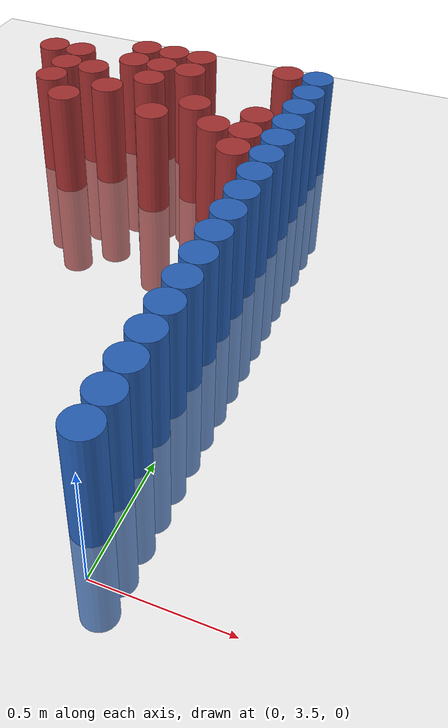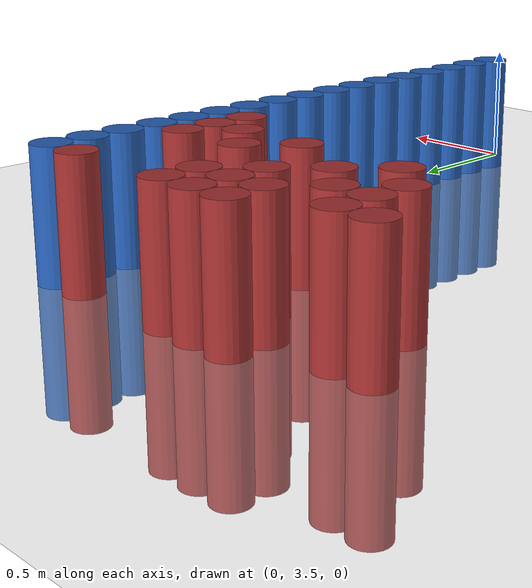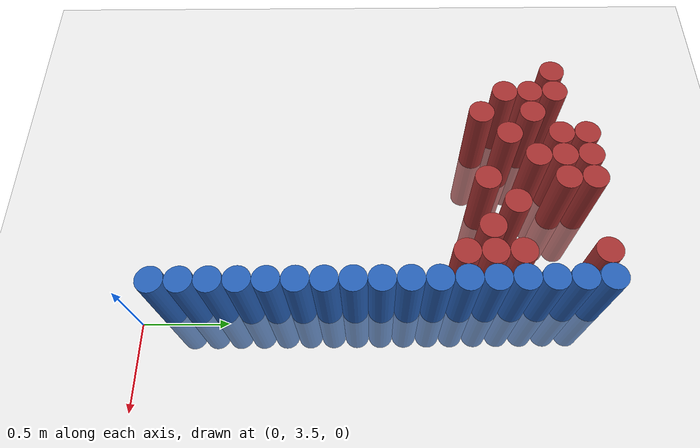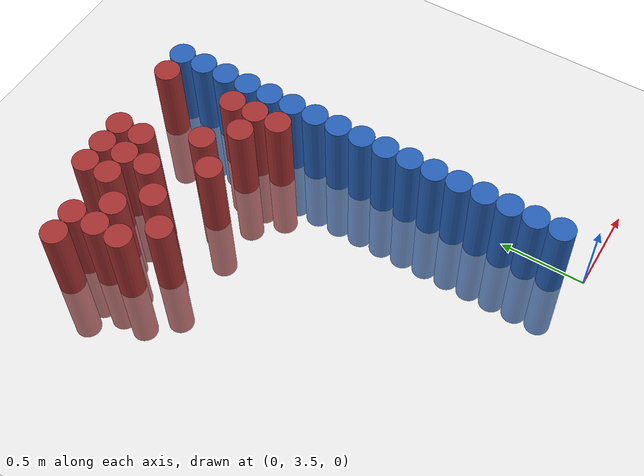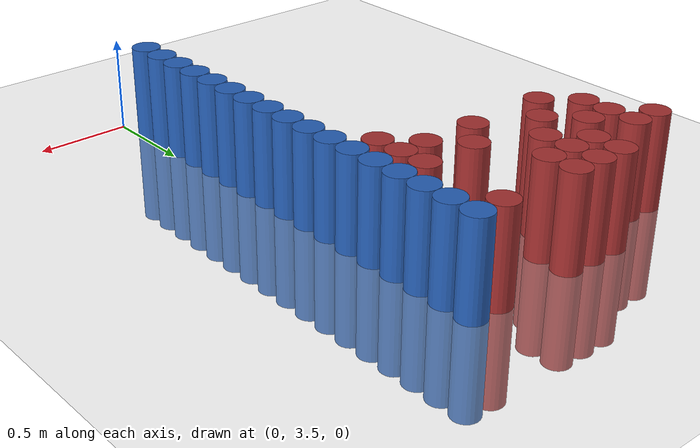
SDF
<sdf version="1.6">
 <world name="default">
  <model name="ground_plane">
   <static>1</static>
   <link name="link">
    <collision name="collision">
     <geometry><plane><normal>0 0 1</normal><size>100 100</size></plane></geometry>
     <surface><friction><ode><mu>100</mu><mu2>50</mu2></ode></friction></surface>
    </collision>
    <visual name="visual">
     <cast_shadows>0</cast_shadows>
     <geometry><plane><normal>0 0 1</normal><size>100 100</size></plane></geometry>
     <material>
      <script><uri>file://media/materials/scripts/gazebo.material</uri><name>Gazebo/Grey</name></script>
     </material>
    </visual>
   </link>
  </model>
  <model name="unit_cylinder_76">
   <static>1</static>
   <pose>-0.075000 3.675000 0.000000 0.000000 0.000000 0.000000</pose>
   <link name="link">
    <inertial>
     <mass>1</mass>
     <inertia><ixx>0.145833</ixx><ixy>0</ixy><ixz>0</ixz><iyy>0.145833</iyy><iyz>0</iyz><izz>0.125</izz></inertia>
    </inertial>
    <collision name="collision">
     <geometry><cylinder><radius>0.075000</radius><length>1</length></cylinder></geometry>
    </collision>
    <visual name="visual">
     <geometry><cylinder><radius>0.075000</radius><length>1</length></cylinder></geometry>
     <material>
      <ambient>0.152000 0.379000 0.720000 1</ambient>
      <diffuse>0.152000 0.379000 0.720000 1</diffuse>
     </material>
     <material>
      <script><name>Gazebo/Grey</name><uri>file://media/materials/scripts/gazebo.material</uri></script>
     </material>
    </visual>
    <sensor name="sensor_contact" type="contact"><contact><collision>collision</collision></contact></sensor>
   </link>
   <plugin filename="gz-sim-touchplugin-system" name="gz::sim::systems::TouchPlugin">
    <target>robot</target>
    <namespace>robot</namespace>
    <time>0.001</time>
    <enabled>true</enabled>
   </plugin>
  </model>
  <model name="unit_cylinder_78">
   <static>1</static>
   <pose>-0.075000 3.825000 0.000000 0.000000 0.000000 0.000000</pose>
   <link name="link">
    <inertial>
     <mass>1</mass>
     <inertia><ixx>0.145833</ixx><ixy>0</ixy><ixz>0</ixz><iyy>0.145833</iyy><iyz>0</iyz><izz>0.125</izz></inertia>
    </inertial>
    <collision name="collision">
     <geometry><cylinder><radius>0.075000</radius><length>1</length></cylinder></geometry>
    </collision>
    <visual name="visual">
     <geometry><cylinder><radius>0.075000</radius><length>1</length></cylinder></geometry>
     <material>
      <ambient>0.152000 0.379000 0.720000 1</ambient>
      <diffuse>0.152000 0.379000 0.720000 1</diffuse>
     </material>
     <material>
      <script><name>Gazebo/Grey</name><uri>file://media/materials/scripts/gazebo.material</uri></script>
     </material>
    </visual>
    <sensor name="sensor_contact" type="contact"><contact><collision>collision</collision></contact></sensor>
   </link>
   <plugin filename="gz-sim-touchplugin-system" name="gz::sim::systems::TouchPlugin">
    <target>robot</target>
    <namespace>robot</namespace>
    <time>0.001</time>
    <enabled>true</enabled>
   </plugin>
  </model>
  <model name="unit_cylinder_80">
   <static>1</static>
   <pose>-0.075000 3.975000 0.000000 0.000000 0.000000 0.000000</pose>
   <link name="link">
    <inertial>
     <mass>1</mass>
     <inertia><ixx>0.145833</ixx><ixy>0</ixy><ixz>0</ixz><iyy>0.145833</iyy><iyz>0</iyz><izz>0.125</izz></inertia>
    </inertial>
    <collision name="collision">
     <geometry><cylinder><radius>0.075000</radius><length>1</length></cylinder></geometry>
    </collision>
    <visual name="visual">
     <geometry><cylinder><radius>0.075000</radius><length>1</length></cylinder></geometry>
     <material>
      <ambient>0.152000 0.379000 0.720000 1</ambient>
      <diffuse>0.152000 0.379000 0.720000 1</diffuse>
     </material>
     <material>
      <script><name>Gazebo/Grey</name><uri>file://media/materials/scripts/gazebo.material</uri></script>
     </material>
    </visual>
    <sensor name="sensor_contact" type="contact"><contact><collision>collision</collision></contact></sensor>
   </link>
   <plugin filename="gz-sim-touchplugin-system" name="gz::sim::systems::TouchPlugin">
    <target>robot</target>
    <namespace>robot</namespace>
    <time>0.001</time>
    <enabled>true</enabled>
   </plugin>
  </model>
  <model name="unit_cylinder_82">
   <static>1</static>
   <pose>-0.075000 4.125000 0.000000 0.000000 0.000000 0.000000</pose>
   <link name="link">
    <inertial>
     <mass>1</mass>
     <inertia><ixx>0.145833</ixx><ixy>0</ixy><ixz>0</ixz><iyy>0.145833</iyy><iyz>0</iyz><izz>0.125</izz></inertia>
    </inertial>
    <collision name="collision">
     <geometry><cylinder><radius>0.075000</radius><length>1</length></cylinder></geometry>
    </collision>
    <visual name="visual">
     <geometry><cylinder><radius>0.075000</radius><length>1</length></cylinder></geometry>
     <material>
      <ambient>0.152000 0.379000 0.720000 1</ambient>
      <diffuse>0.152000 0.379000 0.720000 1</diffuse>
     </material>
     <material>
      <script><name>Gazebo/Grey</name><uri>file://media/materials/scripts/gazebo.material</uri></script>
     </material>
    </visual>
    <sensor name="sensor_contact" type="contact"><contact><collision>collision</collision></contact></sensor>
   </link>
   <plugin filename="gz-sim-touchplugin-system" name="gz::sim::systems::TouchPlugin">
    <target>robot</target>
    <namespace>robot</namespace>
    <time>0.001</time>
    <enabled>true</enabled>
   </plugin>
  </model>
  <model name="unit_cylinder_84">
   <static>1</static>
   <pose>-0.075000 4.275000 0.000000 0.000000 0.000000 0.000000</pose>
   <link name="link">
    <inertial>
     <mass>1</mass>
     <inertia><ixx>0.145833</ixx><ixy>0</ixy><ixz>0</ixz><iyy>0.145833</iyy><iyz>0</iyz><izz>0.125</izz></inertia>
    </inertial>
    <collision name="collision">
     <geometry><cylinder><radius>0.075000</radius><length>1</length></cylinder></geometry>
    </collision>
    <visual name="visual">
     <geometry><cylinder><radius>0.075000</radius><length>1</length></cylinder></geometry>
     <material>
      <ambient>0.152000 0.379000 0.720000 1</ambient>
      <diffuse>0.152000 0.379000 0.720000 1</diffuse>
     </material>
     <material>
      <script><name>Gazebo/Grey</name><uri>file://media/materials/scripts/gazebo.material</uri></script>
     </material>
    </visual>
    <sensor name="sensor_contact" type="contact"><contact><collision>collision</collision></contact></sensor>
   </link>
   <plugin filename="gz-sim-touchplugin-system" name="gz::sim::systems::TouchPlugin">
    <target>robot</target>
    <namespace>robot</namespace>
    <time>0.001</time>
    <enabled>true</enabled>
   </plugin>
  </model>
  <model name="unit_cylinder_86">
   <static>1</static>
   <pose>-0.075000 4.425000 0.000000 0.000000 0.000000 0.000000</pose>
   <link name="link">
    <inertial>
     <mass>1</mass>
     <inertia><ixx>0.145833</ixx><ixy>0</ixy><ixz>0</ixz><iyy>0.145833</iyy><iyz>0</iyz><izz>0.125</izz></inertia>
    </inertial>
    <collision name="collision">
     <geometry><cylinder><radius>0.075000</radius><length>1</length></cylinder></geometry>
    </collision>
    <visual name="visual">
     <geometry><cylinder><radius>0.075000</radius><length>1</length></cylinder></geometry>
     <material>
      <ambient>0.152000 0.379000 0.720000 1</ambient>
      <diffuse>0.152000 0.379000 0.720000 1</diffuse>
     </material>
     <material>
      <script><name>Gazebo/Grey</name><uri>file://media/materials/scripts/gazebo.material</uri></script>
     </material>
    </visual>
    <sensor name="sensor_contact" type="contact"><contact><collision>collision</collision></contact></sensor>
   </link>
   <plugin filename="gz-sim-touchplugin-system" name="gz::sim::systems::TouchPlugin">
    <target>robot</target>
    <namespace>robot</namespace>
    <time>0.001</time>
    <enabled>true</enabled>
   </plugin>
  </model>
  <model name="unit_cylinder_88">
   <static>1</static>
   <pose>-0.075000 4.575000 0.000000 0.000000 0.000000 0.000000</pose>
   <link name="link">
    <inertial>
     <mass>1</mass>
     <inertia><ixx>0.145833</ixx><ixy>0</ixy><ixz>0</ixz><iyy>0.145833</iyy><iyz>0</iyz><izz>0.125</izz></inertia>
    </inertial>
    <collision name="collision">
     <geometry><cylinder><radius>0.075000</radius><length>1</length></cylinder></geometry>
    </collision>
    <visual name="visual">
     <geometry><cylinder><radius>0.075000</radius><length>1</length></cylinder></geometry>
     <material>
      <ambient>0.152000 0.379000 0.720000 1</ambient>
      <diffuse>0.152000 0.379000 0.720000 1</diffuse>
     </material>
     <material>
      <script><name>Gazebo/Grey</name><uri>file://media/materials/scripts/gazebo.material</uri></script>
     </material>
    </visual>
    <sensor name="sensor_contact" type="contact"><contact><collision>collision</collision></contact></sensor>
   </link>
   <plugin filename="gz-sim-touchplugin-system" name="gz::sim::systems::TouchPlugin">
    <target>robot</target>
    <namespace>robot</namespace>
    <time>0.001</time>
    <enabled>true</enabled>
   </plugin>
  </model>
  <model name="unit_cylinder_90">
   <static>1</static>
   <pose>-0.075000 4.725000 0.000000 0.000000 0.000000 0.000000</pose>
   <link name="link">
    <inertial>
     <mass>1</mass>
     <inertia><ixx>0.145833</ixx><ixy>0</ixy><ixz>0</ixz><iyy>0.145833</iyy><iyz>0</iyz><izz>0.125</izz></inertia>
    </inertial>
    <collision name="collision">
     <geometry><cylinder><radius>0.075000</radius><length>1</length></cylinder></geometry>
    </collision>
    <visual name="visual">
     <geometry><cylinder><radius>0.075000</radius><length>1</length></cylinder></geometry>
     <material>
      <ambient>0.152000 0.379000 0.720000 1</ambient>
      <diffuse>0.152000 0.379000 0.720000 1</diffuse>
     </material>
     <material>
      <script><name>Gazebo/Grey</name><uri>file://media/materials/scripts/gazebo.material</uri></script>
     </material>
    </visual>
    <sensor name="sensor_contact" type="contact"><contact><collision>collision</collision></contact></sensor>
   </link>
   <plugin filename="gz-sim-touchplugin-system" name="gz::sim::systems::TouchPlugin">
    <target>robot</target>
    <namespace>robot</namespace>
    <time>0.001</time>
    <enabled>true</enabled>
   </plugin>
  </model>
  <model name="unit_cylinder_92">
   <static>1</static>
   <pose>-0.075000 4.875000 0.000000 0.000000 0.000000 0.000000</pose>
   <link name="link">
    <inertial>
     <mass>1</mass>
     <inertia><ixx>0.145833</ixx><ixy>0</ixy><ixz>0</ixz><iyy>0.145833</iyy><iyz>0</iyz><izz>0.125</izz></inertia>
    </inertial>
    <collision name="collision">
     <geometry><cylinder><radius>0.075000</radius><length>1</length></cylinder></geometry>
    </collision>
    <visual name="visual">
     <geometry><cylinder><radius>0.075000</radius><length>1</length></cylinder></geometry>
     <material>
      <ambient>0.152000 0.379000 0.720000 1</ambient>
      <diffuse>0.152000 0.379000 0.720000 1</diffuse>
     </material>
     <material>
      <script><name>Gazebo/Grey</name><uri>file://media/materials/scripts/gazebo.material</uri></script>
     </material>
    </visual>
    <sensor name="sensor_contact" type="contact"><contact><collision>collision</collision></contact></sensor>
   </link>
   <plugin filename="gz-sim-touchplugin-system" name="gz::sim::systems::TouchPlugin">
    <target>robot</target>
    <namespace>robot</namespace>
    <time>0.001</time>
    <enabled>true</enabled>
   </plugin>
  </model>
  <model name="unit_cylinder_94">
   <static>1</static>
   <pose>-0.075000 5.025000 0.000000 0.000000 0.000000 0.000000</pose>
   <link name="link">
    <inertial>
     <mass>1</mass>
     <inertia><ixx>0.145833</ixx><ixy>0</ixy><ixz>0</ixz><iyy>0.145833</iyy><iyz>0</iyz><izz>0.125</izz></inertia>
    </inertial>
    <collision name="collision">
     <geometry><cylinder><radius>0.075000</radius><length>1</length></cylinder></geometry>
    </collision>
    <visual name="visual">
     <geometry><cylinder><radius>0.075000</radius><length>1</length></cylinder></geometry>
     <material>
      <ambient>0.152000 0.379000 0.720000 1</ambient>
      <diffuse>0.152000 0.379000 0.720000 1</diffuse>
     </material>
     <material>
      <script><name>Gazebo/Grey</name><uri>file://media/materials/scripts/gazebo.material</uri></script>
     </material>
    </visual>
    <sensor name="sensor_contact" type="contact"><contact><collision>collision</collision></contact></sensor>
   </link>
   <plugin filename="gz-sim-touchplugin-system" name="gz::sim::systems::TouchPlugin">
    <target>robot</target>
    <namespace>robot</namespace>
    <time>0.001</time>
    <enabled>true</enabled>
   </plugin>
  </model>
  <model name="unit_cylinder_244">
   <static>1</static>
   <pose>-1.425000 5.925000 0.000000 0.000000 0.000000 0.000000</pose>
   <link name="link">
    <inertial>
     <mass>1</mass>
     <inertia><ixx>0.145833</ixx><ixy>0</ixy><ixz>0</ixz><iyy>0.145833</iyy><iyz>0</iyz><izz>0.125</izz></inertia>
    </inertial>
    <collision name="collision">
     <geometry><cylinder><radius>0.075000</radius><length>1</length></cylinder></geometry>
    </collision>
    <visual name="visual">
     <geometry><cylinder><radius>0.075000</radius><length>1</length></cylinder></geometry>
     <material>
      <ambient>0.648000 0.192000 0.192000 1</ambient>
      <diffuse>0.648000 0.192000 0.192000 1</diffuse>
     </material>
     <material>
      <script><name>Gazebo/Grey</name><uri>file://media/materials/scripts/gazebo.material</uri></script>
     </material>
    </visual>
    <sensor name="sensor_contact" type="contact"><contact><collision>collision</collision></contact></sensor>
   </link>
   <plugin filename="gz-sim-touchplugin-system" name="gz::sim::systems::TouchPlugin">
    <target>robot</target>
    <namespace>robot</namespace>
    <time>0.001</time>
    <enabled>true</enabled>
   </plugin>
  </model>
  <model name="unit_cylinder_249">
   <static>1</static>
   <pose>-1.275000 5.625000 0.000000 0.000000 0.000000 0.000000</pose>
   <link name="link">
    <inertial>
     <mass>1</mass>
     <inertia><ixx>0.145833</ixx><ixy>0</ixy><ixz>0</ixz><iyy>0.145833</iyy><iyz>0</iyz><izz>0.125</izz></inertia>
    </inertial>
    <collision name="collision">
     <geometry><cylinder><radius>0.075000</radius><length>1</length></cylinder></geometry>
    </collision>
    <visual name="visual">
     <geometry><cylinder><radius>0.075000</radius><length>1</length></cylinder></geometry>
     <material>
      <ambient>0.648000 0.192000 0.192000 1</ambient>
      <diffuse>0.648000 0.192000 0.192000 1</diffuse>
     </material>
     <material>
      <script><name>Gazebo/Grey</name><uri>file://media/materials/scripts/gazebo.material</uri></script>
     </material>
    </visual>
    <sensor name="sensor_contact" type="contact"><contact><collision>collision</collision></contact></sensor>
   </link>
   <plugin filename="gz-sim-touchplugin-system" name="gz::sim::systems::TouchPlugin">
    <target>robot</target>
    <namespace>robot</namespace>
    <time>0.001</time>
    <enabled>true</enabled>
   </plugin>
  </model>
  <model name="unit_cylinder_250">
   <static>1</static>
   <pose>-1.275000 5.775000 0.000000 0.000000 0.000000 0.000000</pose>
   <link name="link">
    <inertial>
     <mass>1</mass>
     <inertia><ixx>0.145833</ixx><ixy>0</ixy><ixz>0</ixz><iyy>0.145833</iyy><iyz>0</iyz><izz>0.125</izz></inertia>
    </inertial>
    <collision name="collision">
     <geometry><cylinder><radius>0.075000</radius><length>1</length></cylinder></geometry>
    </collision>
    <visual name="visual">
     <geometry><cylinder><radius>0.075000</radius><length>1</length></cylinder></geometry>
     <material>
      <ambient>0.648000 0.192000 0.192000 1</ambient>
      <diffuse>0.648000 0.192000 0.192000 1</diffuse>
     </material>
     <material>
      <script><name>Gazebo/Grey</name><uri>file://media/materials/scripts/gazebo.material</uri></script>
     </material>
    </visual>
    <sensor name="sensor_contact" type="contact"><contact><collision>collision</collision></contact></sensor>
   </link>
   <plugin filename="gz-sim-touchplugin-system" name="gz::sim::systems::TouchPlugin">
    <target>robot</target>
    <namespace>robot</namespace>
    <time>0.001</time>
    <enabled>true</enabled>
   </plugin>
  </model>
  <model name="unit_cylinder_251">
   <static>1</static>
   <pose>-1.275000 5.925000 0.000000 0.000000 0.000000 0.000000</pose>
   <link name="link">
    <inertial>
     <mass>1</mass>
     <inertia><ixx>0.145833</ixx><ixy>0</ixy><ixz>0</ixz><iyy>0.145833</iyy><iyz>0</iyz><izz>0.125</izz></inertia>
    </inertial>
    <collision name="collision">
     <geometry><cylinder><radius>0.075000</radius><length>1</length></cylinder></geometry>
    </collision>
    <visual name="visual">
     <geometry><cylinder><radius>0.075000</radius><length>1</length></cylinder></geometry>
     <material>
      <ambient>0.648000 0.192000 0.192000 1</ambient>
      <diffuse>0.648000 0.192000 0.192000 1</diffuse>
     </material>
     <material>
      <script><name>Gazebo/Grey</name><uri>file://media/materials/scripts/gazebo.material</uri></script>
     </material>
    </visual>
    <sensor name="sensor_contact" type="contact"><contact><collision>collision</collision></contact></sensor>
   </link>
   <plugin filename="gz-sim-touchplugin-system" name="gz::sim::systems::TouchPlugin">
    <target>robot</target>
    <namespace>robot</namespace>
    <time>0.001</time>
    <enabled>true</enabled>
   </plugin>
  </model>
  <model name="unit_cylinder_255">
   <static>1</static>
   <pose>-1.125000 5.475000 0.000000 0.000000 0.000000 0.000000</pose>
   <link name="link">
    <inertial>
     <mass>1</mass>
     <inertia><ixx>0.145833</ixx><ixy>0</ixy><ixz>0</ixz><iyy>0.145833</iyy><iyz>0</iyz><izz>0.125</izz></inertia>
    </inertial>
    <collision name="collision">
     <geometry><cylinder><radius>0.075000</radius><length>1</length></cylinder></geometry>
    </collision>
    <visual name="visual">
     <geometry><cylinder><radius>0.075000</radius><length>1</length></cylinder></geometry>
     <material>
      <ambient>0.648000 0.192000 0.192000 1</ambient>
      <diffuse>0.648000 0.192000 0.192000 1</diffuse>
     </material>
     <material>
      <script><name>Gazebo/Grey</name><uri>file://media/materials/scripts/gazebo.material</uri></script>
     </material>
    </visual>
    <sensor name="sensor_contact" type="contact"><contact><collision>collision</collision></contact></sensor>
   </link>
   <plugin filename="gz-sim-touchplugin-system" name="gz::sim::systems::TouchPlugin">
    <target>robot</target>
    <namespace>robot</namespace>
    <time>0.001</time>
    <enabled>true</enabled>
   </plugin>
  </model>
  <model name="unit_cylinder_256">
   <static>1</static>
   <pose>-1.125000 5.775000 0.000000 0.000000 0.000000 0.000000</pose>
   <link name="link">
    <inertial>
     <mass>1</mass>
     <inertia><ixx>0.145833</ixx><ixy>0</ixy><ixz>0</ixz><iyy>0.145833</iyy><iyz>0</iyz><izz>0.125</izz></inertia>
    </inertial>
    <collision name="collision">
     <geometry><cylinder><radius>0.075000</radius><length>1</length></cylinder></geometry>
    </collision>
    <visual name="visual">
     <geometry><cylinder><radius>0.075000</radius><length>1</length></cylinder></geometry>
     <material>
      <ambient>0.648000 0.192000 0.192000 1</ambient>
      <diffuse>0.648000 0.192000 0.192000 1</diffuse>
     </material>
     <material>
      <script><name>Gazebo/Grey</name><uri>file://media/materials/scripts/gazebo.material</uri></script>
     </material>
    </visual>
    <sensor name="sensor_contact" type="contact"><contact><collision>collision</collision></contact></sensor>
   </link>
   <plugin filename="gz-sim-touchplugin-system" name="gz::sim::systems::TouchPlugin">
    <target>robot</target>
    <namespace>robot</namespace>
    <time>0.001</time>
    <enabled>true</enabled>
   </plugin>
  </model>
  <model name="unit_cylinder_260">
   <static>1</static>
   <pose>-0.975000 5.625000 0.000000 0.000000 0.000000 0.000000</pose>
   <link name="link">
    <inertial>
     <mass>1</mass>
     <inertia><ixx>0.145833</ixx><ixy>0</ixy><ixz>0</ixz><iyy>0.145833</iyy><iyz>0</iyz><izz>0.125</izz></inertia>
    </inertial>
    <collision name="collision">
     <geometry><cylinder><radius>0.075000</radius><length>1</length></cylinder></geometry>
    </collision>
    <visual name="visual">
     <geometry><cylinder><radius>0.075000</radius><length>1</length></cylinder></geometry>
     <material>
      <ambient>0.648000 0.192000 0.192000 1</ambient>
      <diffuse>0.648000 0.192000 0.192000 1</diffuse>
     </material>
     <material>
      <script><name>Gazebo/Grey</name><uri>file://media/materials/scripts/gazebo.material</uri></script>
     </material>
    </visual>
    <sensor name="sensor_contact" type="contact"><contact><collision>collision</collision></contact></sensor>
   </link>
   <plugin filename="gz-sim-touchplugin-system" name="gz::sim::systems::TouchPlugin">
    <target>robot</target>
    <namespace>robot</namespace>
    <time>0.001</time>
    <enabled>true</enabled>
   </plugin>
  </model>
  <model name="unit_cylinder_261">
   <static>1</static>
   <pose>-0.975000 5.925000 0.000000 0.000000 0.000000 0.000000</pose>
   <link name="link">
    <inertial>
     <mass>1</mass>
     <inertia><ixx>0.145833</ixx><ixy>0</ixy><ixz>0</ixz><iyy>0.145833</iyy><iyz>0</iyz><izz>0.125</izz></inertia>
    </inertial>
    <collision name="collision">
     <geometry><cylinder><radius>0.075000</radius><length>1</length></cylinder></geometry>
    </collision>
    <visual name="visual">
     <geometry><cylinder><radius>0.075000</radius><length>1</length></cylinder></geometry>
     <material>
      <ambient>0.648000 0.192000 0.192000 1</ambient>
      <diffuse>0.648000 0.192000 0.192000 1</diffuse>
     </material>
     <material>
      <script><name>Gazebo/Grey</name><uri>file://media/materials/scripts/gazebo.material</uri></script>
     </material>
    </visual>
    <sensor name="sensor_contact" type="contact"><contact><collision>collision</collision></contact></sensor>
   </link>
   <plugin filename="gz-sim-touchplugin-system" name="gz::sim::systems::TouchPlugin">
    <target>robot</target>
    <namespace>robot</namespace>
    <time>0.001</time>
    <enabled>true</enabled>
   </plugin>
  </model>
  <model name="unit_cylinder_262">
   <static>1</static>
   <pose>-0.975000 6.075000 0.000000 0.000000 0.000000 0.000000</pose>
   <link name="link">
    <inertial>
     <mass>1</mass>
     <inertia><ixx>0.145833</ixx><ixy>0</ixy><ixz>0</ixz><iyy>0.145833</iyy><iyz>0</iyz><izz>0.125</izz></inertia>
    </inertial>
    <collision name="collision">
     <geometry><cylinder><radius>0.075000</radius><length>1</length></cylinder></geometry>
    </collision>
    <visual name="visual">
     <geometry><cylinder><radius>0.075000</radius><length>1</length></cylinder></geometry>
     <material>
      <ambient>0.648000 0.192000 0.192000 1</ambient>
      <diffuse>0.648000 0.192000 0.192000 1</diffuse>
     </material>
     <material>
      <script><name>Gazebo/Grey</name><uri>file://media/materials/scripts/gazebo.material</uri></script>
     </material>
    </visual>
    <sensor name="sensor_contact" type="contact"><contact><collision>collision</collision></contact></sensor>
   </link>
   <plugin filename="gz-sim-touchplugin-system" name="gz::sim::systems::TouchPlugin">
    <target>robot</target>
    <namespace>robot</namespace>
    <time>0.001</time>
    <enabled>true</enabled>
   </plugin>
  </model>
  <model name="unit_cylinder_266">
   <static>1</static>
   <pose>-0.825000 5.775000 0.000000 0.000000 0.000000 0.000000</pose>
   <link name="link">
    <inertial>
     <mass>1</mass>
     <inertia><ixx>0.145833</ixx><ixy>0</ixy><ixz>0</ixz><iyy>0.145833</iyy><iyz>0</iyz><izz>0.125</izz></inertia>
    </inertial>
    <collision name="collision">
     <geometry><cylinder><radius>0.075000</radius><length>1</length></cylinder></geometry>
    </collision>
    <visual name="visual">
     <geometry><cylinder><radius>0.075000</radius><length>1</length></cylinder></geometry>
     <material>
      <ambient>0.648000 0.192000 0.192000 1</ambient>
      <diffuse>0.648000 0.192000 0.192000 1</diffuse>
     </material>
     <material>
      <script><name>Gazebo/Grey</name><uri>file://media/materials/scripts/gazebo.material</uri></script>
     </material>
    </visual>
    <sensor name="sensor_contact" type="contact"><contact><collision>collision</collision></contact></sensor>
   </link>
   <plugin filename="gz-sim-touchplugin-system" name="gz::sim::systems::TouchPlugin">
    <target>robot</target>
    <namespace>robot</namespace>
    <time>0.001</time>
    <enabled>true</enabled>
   </plugin>
  </model>
  <model name="unit_cylinder_267">
   <static>1</static>
   <pose>-0.825000 5.925000 0.000000 0.000000 0.000000 0.000000</pose>
   <link name="link">
    <inertial>
     <mass>1</mass>
     <inertia><ixx>0.145833</ixx><ixy>0</ixy><ixz>0</ixz><iyy>0.145833</iyy><iyz>0</iyz><izz>0.125</izz></inertia>
    </inertial>
    <collision name="collision">
     <geometry><cylinder><radius>0.075000</radius><length>1</length></cylinder></geometry>
    </collision>
    <visual name="visual">
     <geometry><cylinder><radius>0.075000</radius><length>1</length></cylinder></geometry>
     <material>
      <ambient>0.648000 0.192000 0.192000 1</ambient>
      <diffuse>0.648000 0.192000 0.192000 1</diffuse>
     </material>
     <material>
      <script><name>Gazebo/Grey</name><uri>file://media/materials/scripts/gazebo.material</uri></script>
     </material>
    </visual>
    <sensor name="sensor_contact" type="contact"><contact><collision>collision</collision></contact></sensor>
   </link>
   <plugin filename="gz-sim-touchplugin-system" name="gz::sim::systems::TouchPlugin">
    <target>robot</target>
    <namespace>robot</namespace>
    <time>0.001</time>
    <enabled>true</enabled>
   </plugin>
  </model>
  <model name="unit_cylinder_268">
   <static>1</static>
   <pose>-0.825000 6.075000 0.000000 0.000000 0.000000 0.000000</pose>
   <link name="link">
    <inertial>
     <mass>1</mass>
     <inertia><ixx>0.145833</ixx><ixy>0</ixy><ixz>0</ixz><iyy>0.145833</iyy><iyz>0</iyz><izz>0.125</izz></inertia>
    </inertial>
    <collision name="collision">
     <geometry><cylinder><radius>0.075000</radius><length>1</length></cylinder></geometry>
    </collision>
    <visual name="visual">
     <geometry><cylinder><radius>0.075000</radius><length>1</length></cylinder></geometry>
     <material>
      <ambient>0.648000 0.192000 0.192000 1</ambient>
      <diffuse>0.648000 0.192000 0.192000 1</diffuse>
     </material>
     <material>
      <script><name>Gazebo/Grey</name><uri>file://media/materials/scripts/gazebo.material</uri></script>
     </material>
    </visual>
    <sensor name="sensor_contact" type="contact"><contact><collision>collision</collision></contact></sensor>
   </link>
   <plugin filename="gz-sim-touchplugin-system" name="gz::sim::systems::TouchPlugin">
    <target>robot</target>
    <namespace>robot</namespace>
    <time>0.001</time>
    <enabled>true</enabled>
   </plugin>
  </model>
  <model name="unit_cylinder_275">
   <static>1</static>
   <pose>-0.675000 5.475000 0.000000 0.000000 0.000000 0.000000</pose>
   <link name="link">
    <inertial>
     <mass>1</mass>
     <inertia><ixx>0.145833</ixx><ixy>0</ixy><ixz>0</ixz><iyy>0.145833</iyy><iyz>0</iyz><izz>0.125</izz></inertia>
    </inertial>
    <collision name="collision">
     <geometry><cylinder><radius>0.075000</radius><length>1</length></cylinder></geometry>
    </collision>
    <visual name="visual">
     <geometry><cylinder><radius>0.075000</radius><length>1</length></cylinder></geometry>
     <material>
      <ambient>0.648000 0.192000 0.192000 1</ambient>
      <diffuse>0.648000 0.192000 0.192000 1</diffuse>
     </material>
     <material>
      <script><name>Gazebo/Grey</name><uri>file://media/materials/scripts/gazebo.material</uri></script>
     </material>
    </visual>
    <sensor name="sensor_contact" type="contact"><contact><collision>collision</collision></contact></sensor>
   </link>
   <plugin filename="gz-sim-touchplugin-system" name="gz::sim::systems::TouchPlugin">
    <target>robot</target>
    <namespace>robot</namespace>
    <time>0.001</time>
    <enabled>true</enabled>
   </plugin>
  </model>
  <model name="unit_cylinder_276">
   <static>1</static>
   <pose>-0.675000 5.925000 0.000000 0.000000 0.000000 0.000000</pose>
   <link name="link">
    <inertial>
     <mass>1</mass>
     <inertia><ixx>0.145833</ixx><ixy>0</ixy><ixz>0</ixz><iyy>0.145833</iyy><iyz>0</iyz><izz>0.125</izz></inertia>
    </inertial>
    <collision name="collision">
     <geometry><cylinder><radius>0.075000</radius><length>1</length></cylinder></geometry>
    </collision>
    <visual name="visual">
     <geometry><cylinder><radius>0.075000</radius><length>1</length></cylinder></geometry>
     <material>
      <ambient>0.648000 0.192000 0.192000 1</ambient>
      <diffuse>0.648000 0.192000 0.192000 1</diffuse>
     </material>
     <material>
      <script><name>Gazebo/Grey</name><uri>file://media/materials/scripts/gazebo.material</uri></script>
     </material>
    </visual>
    <sensor name="sensor_contact" type="contact"><contact><collision>collision</collision></contact></sensor>
   </link>
   <plugin filename="gz-sim-touchplugin-system" name="gz::sim::systems::TouchPlugin">
    <target>robot</target>
    <namespace>robot</namespace>
    <time>0.001</time>
    <enabled>true</enabled>
   </plugin>
  </model>
  <model name="unit_cylinder_277">
   <static>1</static>
   <pose>-0.675000 6.075000 0.000000 0.000000 0.000000 0.000000</pose>
   <link name="link">
    <inertial>
     <mass>1</mass>
     <inertia><ixx>0.145833</ixx><ixy>0</ixy><ixz>0</ixz><iyy>0.145833</iyy><iyz>0</iyz><izz>0.125</izz></inertia>
    </inertial>
    <collision name="collision">
     <geometry><cylinder><radius>0.075000</radius><length>1</length></cylinder></geometry>
    </collision>
    <visual name="visual">
     <geometry><cylinder><radius>0.075000</radius><length>1</length></cylinder></geometry>
     <material>
      <ambient>0.648000 0.192000 0.192000 1</ambient>
      <diffuse>0.648000 0.192000 0.192000 1</diffuse>
     </material>
     <material>
      <script><name>Gazebo/Grey</name><uri>file://media/materials/scripts/gazebo.material</uri></script>
     </material>
    </visual>
    <sensor name="sensor_contact" type="contact"><contact><collision>collision</collision></contact></sensor>
   </link>
   <plugin filename="gz-sim-touchplugin-system" name="gz::sim::systems::TouchPlugin">
    <target>robot</target>
    <namespace>robot</namespace>
    <time>0.001</time>
    <enabled>true</enabled>
   </plugin>
  </model>
  <model name="unit_cylinder_281">
   <static>1</static>
   <pose>-0.525000 5.625000 0.000000 0.000000 0.000000 0.000000</pose>
   <link name="link">
    <inertial>
     <mass>1</mass>
     <inertia><ixx>0.145833</ixx><ixy>0</ixy><ixz>0</ixz><iyy>0.145833</iyy><iyz>0</iyz><izz>0.125</izz></inertia>
    </inertial>
    <collision name="collision">
     <geometry><cylinder><radius>0.075000</radius><length>1</length></cylinder></geometry>
    </collision>
    <visual name="visual">
     <geometry><cylinder><radius>0.075000</radius><length>1</length></cylinder></geometry>
     <material>
      <ambient>0.648000 0.192000 0.192000 1</ambient>
      <diffuse>0.648000 0.192000 0.192000 1</diffuse>
     </material>
     <material>
      <script><name>Gazebo/Grey</name><uri>file://media/materials/scripts/gazebo.material</uri></script>
     </material>
    </visual>
    <sensor name="sensor_contact" type="contact"><contact><collision>collision</collision></contact></sensor>
   </link>
   <plugin filename="gz-sim-touchplugin-system" name="gz::sim::systems::TouchPlugin">
    <target>robot</target>
    <namespace>robot</namespace>
    <time>0.001</time>
    <enabled>true</enabled>
   </plugin>
  </model>
  <model name="unit_cylinder_283">
   <static>1</static>
   <pose>-0.375000 5.475000 0.000000 0.000000 0.000000 0.000000</pose>
   <link name="link">
    <inertial>
     <mass>1</mass>
     <inertia><ixx>0.145833</ixx><ixy>0</ixy><ixz>0</ixz><iyy>0.145833</iyy><iyz>0</iyz><izz>0.125</izz></inertia>
    </inertial>
    <collision name="collision">
     <geometry><cylinder><radius>0.075000</radius><length>1</length></cylinder></geometry>
    </collision>
    <visual name="visual">
     <geometry><cylinder><radius>0.075000</radius><length>1</length></cylinder></geometry>
     <material>
      <ambient>0.648000 0.192000 0.192000 1</ambient>
      <diffuse>0.648000 0.192000 0.192000 1</diffuse>
     </material>
     <material>
      <script><name>Gazebo/Grey</name><uri>file://media/materials/scripts/gazebo.material</uri></script>
     </material>
    </visual>
    <sensor name="sensor_contact" type="contact"><contact><collision>collision</collision></contact></sensor>
   </link>
   <plugin filename="gz-sim-touchplugin-system" name="gz::sim::systems::TouchPlugin">
    <target>robot</target>
    <namespace>robot</namespace>
    <time>0.001</time>
    <enabled>true</enabled>
   </plugin>
  </model>
  <model name="unit_cylinder_293">
   <static>1</static>
   <pose>-0.225000 5.325000 0.000000 0.000000 0.000000 0.000000</pose>
   <link name="link">
    <inertial>
     <mass>1</mass>
     <inertia><ixx>0.145833</ixx><ixy>0</ixy><ixz>0</ixz><iyy>0.145833</iyy><iyz>0</iyz><izz>0.125</izz></inertia>
    </inertial>
    <collision name="collision">
     <geometry><cylinder><radius>0.075000</radius><length>1</length></cylinder></geometry>
    </collision>
    <visual name="visual">
     <geometry><cylinder><radius>0.075000</radius><length>1</length></cylinder></geometry>
     <material>
      <ambient>0.648000 0.192000 0.192000 1</ambient>
      <diffuse>0.648000 0.192000 0.192000 1</diffuse>
     </material>
     <material>
      <script><name>Gazebo/Grey</name><uri>file://media/materials/scripts/gazebo.material</uri></script>
     </material>
    </visual>
    <sensor name="sensor_contact" type="contact"><contact><collision>collision</collision></contact></sensor>
   </link>
   <plugin filename="gz-sim-touchplugin-system" name="gz::sim::systems::TouchPlugin">
    <target>robot</target>
    <namespace>robot</namespace>
    <time>0.001</time>
    <enabled>true</enabled>
   </plugin>
  </model>
  <model name="unit_cylinder_294">
   <static>1</static>
   <pose>-0.225000 5.475000 0.000000 0.000000 0.000000 0.000000</pose>
   <link name="link">
    <inertial>
     <mass>1</mass>
     <inertia><ixx>0.145833</ixx><ixy>0</ixy><ixz>0</ixz><iyy>0.145833</iyy><iyz>0</iyz><izz>0.125</izz></inertia>
    </inertial>
    <collision name="collision">
     <geometry><cylinder><radius>0.075000</radius><length>1</length></cylinder></geometry>
    </collision>
    <visual name="visual">
     <geometry><cylinder><radius>0.075000</radius><length>1</length></cylinder></geometry>
     <material>
      <ambient>0.648000 0.192000 0.192000 1</ambient>
      <diffuse>0.648000 0.192000 0.192000 1</diffuse>
     </material>
     <material>
      <script><name>Gazebo/Grey</name><uri>file://media/materials/scripts/gazebo.material</uri></script>
     </material>
    </visual>
    <sensor name="sensor_contact" type="contact"><contact><collision>collision</collision></contact></sensor>
   </link>
   <plugin filename="gz-sim-touchplugin-system" name="gz::sim::systems::TouchPlugin">
    <target>robot</target>
    <namespace>robot</namespace>
    <time>0.001</time>
    <enabled>true</enabled>
   </plugin>
  </model>
  <model name="unit_cylinder_295">
   <static>1</static>
   <pose>-0.225000 5.625000 0.000000 0.000000 0.000000 0.000000</pose>
   <link name="link">
    <inertial>
     <mass>1</mass>
     <inertia><ixx>0.145833</ixx><ixy>0</ixy><ixz>0</ixz><iyy>0.145833</iyy><iyz>0</iyz><izz>0.125</izz></inertia>
    </inertial>
    <collision name="collision">
     <geometry><cylinder><radius>0.075000</radius><length>1</length></cylinder></geometry>
    </collision>
    <visual name="visual">
     <geometry><cylinder><radius>0.075000</radius><length>1</length></cylinder></geometry>
     <material>
      <ambient>0.648000 0.192000 0.192000 1</ambient>
      <diffuse>0.648000 0.192000 0.192000 1</diffuse>
     </material>
     <material>
      <script><name>Gazebo/Grey</name><uri>file://media/materials/scripts/gazebo.material</uri></script>
     </material>
    </visual>
    <sensor name="sensor_contact" type="contact"><contact><collision>collision</collision></contact></sensor>
   </link>
   <plugin filename="gz-sim-touchplugin-system" name="gz::sim::systems::TouchPlugin">
    <target>robot</target>
    <namespace>robot</namespace>
    <time>0.001</time>
    <enabled>true</enabled>
   </plugin>
  </model>
  <model name="unit_cylinder_296">
   <static>1</static>
   <pose>-0.225000 6.075000 0.000000 0.000000 0.000000 0.000000</pose>
   <link name="link">
    <inertial>
     <mass>1</mass>
     <inertia><ixx>0.145833</ixx><ixy>0</ixy><ixz>0</ixz><iyy>0.145833</iyy><iyz>0</iyz><izz>0.125</izz></inertia>
    </inertial>
    <collision name="collision">
     <geometry><cylinder><radius>0.075000</radius><length>1</length></cylinder></geometry>
    </collision>
    <visual name="visual">
     <geometry><cylinder><radius>0.075000</radius><length>1</length></cylinder></geometry>
     <material>
      <ambient>0.648000 0.192000 0.192000 1</ambient>
      <diffuse>0.648000 0.192000 0.192000 1</diffuse>
     </material>
     <material>
      <script><name>Gazebo/Grey</name><uri>file://media/materials/scripts/gazebo.material</uri></script>
     </material>
    </visual>
    <sensor name="sensor_contact" type="contact"><contact><collision>collision</collision></contact></sensor>
   </link>
   <plugin filename="gz-sim-touchplugin-system" name="gz::sim::systems::TouchPlugin">
    <target>robot</target>
    <namespace>robot</namespace>
    <time>0.001</time>
    <enabled>true</enabled>
   </plugin>
  </model>
  <model name="unit_cylinder_311">
   <static>1</static>
   <pose>-0.075000 5.175000 0.000000 0.000000 0.000000 0.000000</pose>
   <link name="link">
    <inertial>
     <mass>1</mass>
     <inertia><ixx>0.145833</ixx><ixy>0</ixy><ixz>0</ixz><iyy>0.145833</iyy><iyz>0</iyz><izz>0.125</izz></inertia>
    </inertial>
    <collision name="collision">
     <geometry><cylinder><radius>0.075000</radius><length>1</length></cylinder></geometry>
    </collision>
    <visual name="visual">
     <geometry><cylinder><radius>0.075000</radius><length>1</length></cylinder></geometry>
     <material>
      <ambient>0.152000 0.379000 0.720000 1</ambient>
      <diffuse>0.152000 0.379000 0.720000 1</diffuse>
     </material>
     <material>
      <script><name>Gazebo/Grey</name><uri>file://media/materials/scripts/gazebo.material</uri></script>
     </material>
    </visual>
    <sensor name="sensor_contact" type="contact"><contact><collision>collision</collision></contact></sensor>
   </link>
   <plugin filename="gz-sim-touchplugin-system" name="gz::sim::systems::TouchPlugin">
    <target>robot</target>
    <namespace>robot</namespace>
    <time>0.001</time>
    <enabled>true</enabled>
   </plugin>
  </model>
  <model name="unit_cylinder_312">
   <static>1</static>
   <pose>-0.075000 5.325000 0.000000 0.000000 0.000000 0.000000</pose>
   <link name="link">
    <inertial>
     <mass>1</mass>
     <inertia><ixx>0.145833</ixx><ixy>0</ixy><ixz>0</ixz><iyy>0.145833</iyy><iyz>0</iyz><izz>0.125</izz></inertia>
    </inertial>
    <collision name="collision">
     <geometry><cylinder><radius>0.075000</radius><length>1</length></cylinder></geometry>
    </collision>
    <visual name="visual">
     <geometry><cylinder><radius>0.075000</radius><length>1</length></cylinder></geometry>
     <material>
      <ambient>0.152000 0.379000 0.720000 1</ambient>
      <diffuse>0.152000 0.379000 0.720000 1</diffuse>
     </material>
     <material>
      <script><name>Gazebo/Grey</name><uri>file://media/materials/scripts/gazebo.material</uri></script>
     </material>
    </visual>
    <sensor name="sensor_contact" type="contact"><contact><collision>collision</collision></contact></sensor>
   </link>
   <plugin filename="gz-sim-touchplugin-system" name="gz::sim::systems::TouchPlugin">
    <target>robot</target>
    <namespace>robot</namespace>
    <time>0.001</time>
    <enabled>true</enabled>
   </plugin>
  </model>
  <model name="unit_cylinder_313">
   <static>1</static>
   <pose>-0.075000 5.475000 0.000000 0.000000 0.000000 0.000000</pose>
   <link name="link">
    <inertial>
     <mass>1</mass>
     <inertia><ixx>0.145833</ixx><ixy>0</ixy><ixz>0</ixz><iyy>0.145833</iyy><iyz>0</iyz><izz>0.125</izz></inertia>
    </inertial>
    <collision name="collision">
     <geometry><cylinder><radius>0.075000</radius><length>1</length></cylinder></geometry>
    </collision>
    <visual name="visual">
     <geometry><cylinder><radius>0.075000</radius><length>1</length></cylinder></geometry>
     <material>
      <ambient>0.152000 0.379000 0.720000 1</ambient>
      <diffuse>0.152000 0.379000 0.720000 1</diffuse>
     </material>
     <material>
      <script><name>Gazebo/Grey</name><uri>file://media/materials/scripts/gazebo.material</uri></script>
     </material>
    </visual>
    <sensor name="sensor_contact" type="contact"><contact><collision>collision</collision></contact></sensor>
   </link>
   <plugin filename="gz-sim-touchplugin-system" name="gz::sim::systems::TouchPlugin">
    <target>robot</target>
    <namespace>robot</namespace>
    <time>0.001</time>
    <enabled>true</enabled>
   </plugin>
  </model>
  <model name="unit_cylinder_314">
   <static>1</static>
   <pose>-0.075000 5.625000 0.000000 0.000000 0.000000 0.000000</pose>
   <link name="link">
    <inertial>
     <mass>1</mass>
     <inertia><ixx>0.145833</ixx><ixy>0</ixy><ixz>0</ixz><iyy>0.145833</iyy><iyz>0</iyz><izz>0.125</izz></inertia>
    </inertial>
    <collision name="collision">
     <geometry><cylinder><radius>0.075000</radius><length>1</length></cylinder></geometry>
    </collision>
    <visual name="visual">
     <geometry><cylinder><radius>0.075000</radius><length>1</length></cylinder></geometry>
     <material>
      <ambient>0.152000 0.379000 0.720000 1</ambient>
      <diffuse>0.152000 0.379000 0.720000 1</diffuse>
     </material>
     <material>
      <script><name>Gazebo/Grey</name><uri>file://media/materials/scripts/gazebo.material</uri></script>
     </material>
    </visual>
    <sensor name="sensor_contact" type="contact"><contact><collision>collision</collision></contact></sensor>
   </link>
   <plugin filename="gz-sim-touchplugin-system" name="gz::sim::systems::TouchPlugin">
    <target>robot</target>
    <namespace>robot</namespace>
    <time>0.001</time>
    <enabled>true</enabled>
   </plugin>
  </model>
  <model name="unit_cylinder_315">
   <static>1</static>
   <pose>-0.075000 5.775000 0.000000 0.000000 0.000000 0.000000</pose>
   <link name="link">
    <inertial>
     <mass>1</mass>
     <inertia><ixx>0.145833</ixx><ixy>0</ixy><ixz>0</ixz><iyy>0.145833</iyy><iyz>0</iyz><izz>0.125</izz></inertia>
    </inertial>
    <collision name="collision">
     <geometry><cylinder><radius>0.075000</radius><length>1</length></cylinder></geometry>
    </collision>
    <visual name="visual">
     <geometry><cylinder><radius>0.075000</radius><length>1</length></cylinder></geometry>
     <material>
      <ambient>0.152000 0.379000 0.720000 1</ambient>
      <diffuse>0.152000 0.379000 0.720000 1</diffuse>
     </material>
     <material>
      <script><name>Gazebo/Grey</name><uri>file://media/materials/scripts/gazebo.material</uri></script>
     </material>
    </visual>
    <sensor name="sensor_contact" type="contact"><contact><collision>collision</collision></contact></sensor>
   </link>
   <plugin filename="gz-sim-touchplugin-system" name="gz::sim::systems::TouchPlugin">
    <target>robot</target>
    <namespace>robot</namespace>
    <time>0.001</time>
    <enabled>true</enabled>
   </plugin>
  </model>
  <model name="unit_cylinder_316">
   <static>1</static>
   <pose>-0.075000 5.925000 0.000000 0.000000 0.000000 0.000000</pose>
   <link name="link">
    <inertial>
     <mass>1</mass>
     <inertia><ixx>0.145833</ixx><ixy>0</ixy><ixz>0</ixz><iyy>0.145833</iyy><iyz>0</iyz><izz>0.125</izz></inertia>
    </inertial>
    <collision name="collision">
     <geometry><cylinder><radius>0.075000</radius><length>1</length></cylinder></geometry>
    </collision>
    <visual name="visual">
     <geometry><cylinder><radius>0.075000</radius><length>1</length></cylinder></geometry>
     <material>
      <ambient>0.152000 0.379000 0.720000 1</ambient>
      <diffuse>0.152000 0.379000 0.720000 1</diffuse>
     </material>
     <material>
      <script><name>Gazebo/Grey</name><uri>file://media/materials/scripts/gazebo.material</uri></script>
     </material>
    </visual>
    <sensor name="sensor_contact" type="contact"><contact><collision>collision</collision></contact></sensor>
   </link>
   <plugin filename="gz-sim-touchplugin-system" name="gz::sim::systems::TouchPlugin">
    <target>robot</target>
    <namespace>robot</namespace>
    <time>0.001</time>
    <enabled>true</enabled>
   </plugin>
  </model>
  <model name="unit_cylinder_317">
   <static>1</static>
   <pose>-0.075000 6.075000 0.000000 0.000000 0.000000 0.000000</pose>
   <link name="link">
    <inertial>
     <mass>1</mass>
     <inertia><ixx>0.145833</ixx><ixy>0</ixy><ixz>0</ixz><iyy>0.145833</iyy><iyz>0</iyz><izz>0.125</izz></inertia>
    </inertial>
    <collision name="collision">
     <geometry><cylinder><radius>0.075000</radius><length>1</length></cylinder></geometry>
    </collision>
    <visual name="visual">
     <geometry><cylinder><radius>0.075000</radius><length>1</length></cylinder></geometry>
     <material>
      <ambient>0.152000 0.379000 0.720000 1</ambient>
      <diffuse>0.152000 0.379000 0.720000 1</diffuse>
     </material>
     <material>
      <script><name>Gazebo/Grey</name><uri>file://media/materials/scripts/gazebo.material</uri></script>
     </material>
    </visual>
    <sensor name="sensor_contact" type="contact"><contact><collision>collision</collision></contact></sensor>
   </link>
   <plugin filename="gz-sim-touchplugin-system" name="gz::sim::systems::TouchPlugin">
    <target>robot</target>
    <namespace>robot</namespace>
    <time>0.001</time>
    <enabled>true</enabled>
   </plugin>
  </model>
 </world>
</sdf>
